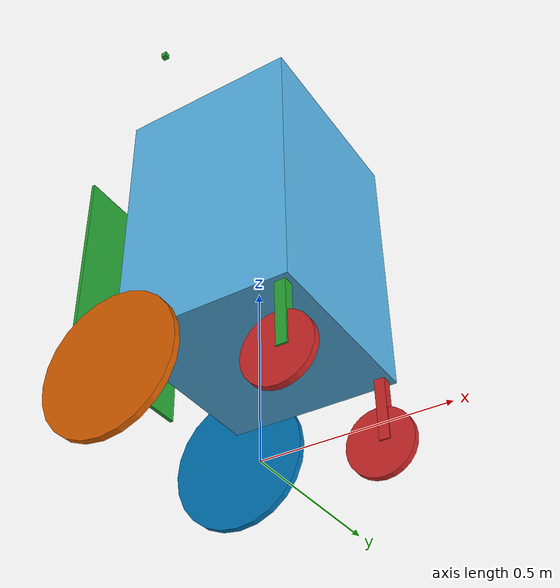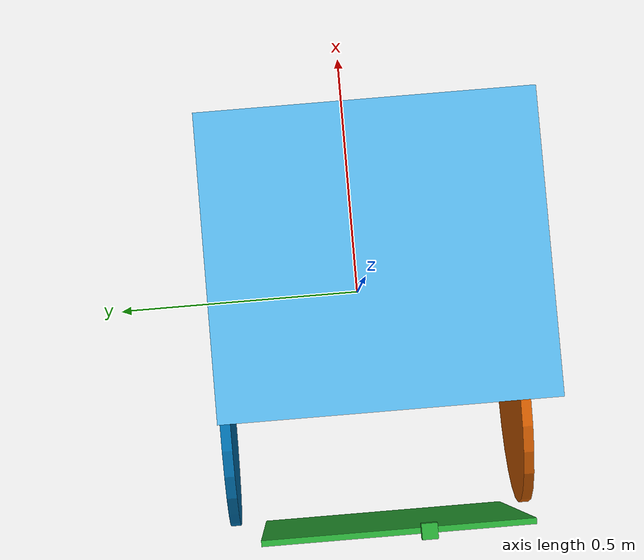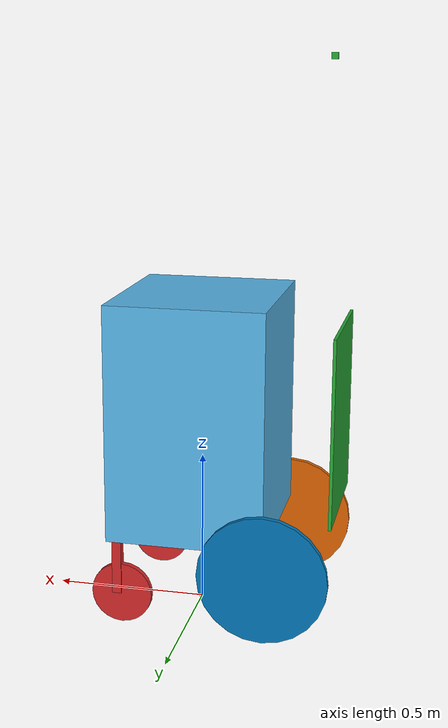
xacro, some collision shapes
<?xml version="1.0"?>
<!--
	This is a differential drive robot badly
        modelled after the wheelchair

        This robot has a camera
        It now has a target
        It now tilts the camera

	Version 1.2.
	-->

<robot name="$(arg name)" xmlns:xacro="http://www.ros.org/wiki/xacro">

  <!-- Define the robot -->
  <xacro:arg name="camera_tilt" default="0.0" />
  <xacro:property name="camera_tilt" value="$(arg camera_tilt)" />
  <xacro:arg name="show_video" default="true" />
  <xacro:property name="show_video" value="$(arg show_video)" />
  <xacro:arg name="robot_name" default="chair" />
  <xacro:property name="robot_name" value="$(arg name)" />
  <xacro:arg name="target" default="apriltag_36h10_0" />
  <xacro:property name="target" value="$(arg target)" />
  <xacro:property name="robot_base_width" value="0.556" />
  <xacro:property name="robot_base_length" value="0.504" />
  <xacro:property name="robot_base_height" value="0.762" />
  <xacro:property name="robot_base_mass" value="4.5" />
  <xacro:property name="robot_wheel_zoffset" value="-0.457" />
  <xacro:property name="robot_wheel_xoffset" value="-0.252" />
  <xacro:property name="robot_wheel_radius" value="0.206" />
  <xacro:property name="robot_wheel_width" value="0.02" />
  <xacro:property name="robot_caster_link_height" value="0.179" />
  <xacro:property name="robot_caster_link_width" value="0.03" />
  <xacro:property name="robot_caster_link_length" value="0.03" />
  <xacro:property name="robot_caster_link_offset" value="-0.025" />
  <xacro:property name="robot_caster_joint_offset" value="${robot_base_length/2}" />
  <xacro:property name="robot_caster_wheel_radius" value="0.098" />
  <xacro:property name="robot_caster_wheel_width" value="0.02" />
  <xacro:property name="robot_camera_length" value="0.02" />
  <xacro:property name="robot_camera_width" value="0.02" />
  <xacro:property name="robot_camera_height" value="0.02" />
  <xacro:property name="robot_camera_xoffset" value="-0.4" />
  <xacro:property name="robot_camera_zoffset" value="1.1" />
  <xacro:property name="target_width" value="0.45" />
  <xacro:property name="target_length" value="0.01" />
  <xacro:property name="target_height" value="0.60" />
  <xacro:property name="target_xoffset" value="-0.45" />
  <xacro:property name="target_zoffset" value="-0.3" />

  <!-- Import colors defined externally -->
  <xacro:include filename="$(find chair)/colors.xacro" />

  <!-- Define macros to make moments of inertia easier -->
  <xacro:macro name="I_cylinder" params="m r h">
    <inertial>
      <mass value="${m}" />
      <inertia  ixx="${m*(3*r*r+h*h)/12}" iyy="${m*(3*r*r+h*h)/12}" izz="${m*r*r/2}"
              ixy = "0" ixz = "0" iyz = "0" />
    </inertial>
  </xacro:macro>
  <xacro:macro name="I_cuboid" params="m x y z">
    <inertial>
      <mass value="${m}" />
      <inertia  ixx="${m*(y*y+z*z)/12}" iyy="${m*(x*x+z*z)/12}" izz="${m*(x*x+z*z)/12}"
                ixy = "0" ixz = "0" iyz = "0" />
    </inertial>
  </xacro:macro>

  <!-- robot footprint -->
  <link name="base_footprint">
  </link>

  <!-- Base -->
  <link name="base_link">
    <visual>
      <origin rpy="1.57 0 -1.57" xyz="-0.3 0.0 0.4" />
      <geometry>
        <!-- box size="${robot_base_length} ${robot_base_width} ${robot_base_height}" -->
        <mesh filename="$(find chair)/emptychair.obj" scale="0.001 0.001 0.001"/>
      </geometry>
    </visual>
    <collision>
      <geometry>
        <box size="${robot_base_length} ${robot_base_width} ${robot_base_height}" />
      </geometry>
    </collision>
    <xacro:I_cuboid m="8.4" x="${robot_base_length}" y="${robot_base_width}" z="${robot_base_height}" />
  </link>

  <joint name="base_joint" type="fixed">
    <origin xyz="0.0 0.0 ${robot_wheel_radius-robot_wheel_zoffset}" rpy="0.0 0.0 0.0" />
    <parent link="base_footprint" />
    <child link="base_link" />
    <axis xyz="0 0 1" />
  </joint>

  <!-- Visual Target -->
  <gazebo reference="target_link">
    <material>${target}</material>
  </gazebo>
  <link name="target_link">
    <visual>
      <geometry>
        <box size="${target_length} ${target_width} ${target_height}" />
      </geometry>
      <material name="green"/>
    </visual>
    <collision>
      <geometry>
        <box size="${target_length} ${target_width} ${target_height}" />
      </geometry>
    </collision>
    <xacro:I_cuboid m="0.01" x="${target_length}" y="${target_width}" z="${target_height}" />
  </link>

  <joint name="target_joint" type="fixed">
    <origin xyz="${target_xoffset} 0.0 ${target_zoffset+target_height/2}" rpy="0.0 0.0 0.0" />
    <parent link="base_link" />
    <child link="target_link" />
    <axis xyz="0 0 1" />
  </joint>

  <!-- Cameraunit -->
  <gazebo reference="camera_link">
    <material>Gazebo/Green</material>
  </gazebo>
  <link name="camera_link">
    <visual>
      <geometry>
        <box size="${robot_camera_length} ${robot_camera_width} ${robot_camera_height}" />
      </geometry>
      <material name="green"/>
    </visual>
    <collision>
      <geometry>
        <box size="${robot_camera_length} ${robot_camera_width} ${robot_camera_height}" />
      </geometry>
    </collision>
    <xacro:I_cuboid m="0.01" x="${robot_camera_length}" y="${robot_camera_width}" z="${robot_camera_height}" />
  </link>

  <joint name="camera_joint" type="fixed">
    <origin xyz="${robot_camera_xoffset} 0.0 ${robot_camera_zoffset+robot_camera_height/2}" rpy="0 ${camera_tilt} 0" />
    <parent link="base_link" />
    <child link="camera_link" />
    <axis xyz="0 0 1" />
  </joint>

  <gazebo reference="camera_link">
    <sensor type="camera" name="camera">
      <visualize>${show_video}</visualize>
      <camera>
        <horizontal_fov>${65 * 3.1415/180}</horizontal_fov>
        <image>
          <format>R8G8B8</format>
          <width>640</width>
          <height>480</height>
        </image>
        <clip>
          <near>0.05</near>
          <far>50.0</far>
        </clip>
      </camera>
      <plugin name="camera_controller" filename="libgazebo_ros_camera.so">
        <ros>
          <namespace>/${robot_name}</namespace>
        </ros>
        <camera_name>camera</camera_name>
        <frame_name>camera_link</frame_name>
      </plugin>
    </sensor>
  </gazebo>

  <!-- Left wheel -->
  <link name="left_wheel_link">
    <visual>
      <!-- origin rpy="0 1.5708 0" xyz="0 0 0" -->
      <geometry>
        <cylinder length="${robot_wheel_width}" radius="${robot_wheel_radius}" />
        <!-- mesh filename="$(find chair)/rearwheel.obj" scale="0.001 0.001 0.001"-->>
      </geometry>
    </visual>
    <collision>
      <geometry>
        <cylinder length="${robot_wheel_width}" radius="${robot_wheel_radius}" />
      </geometry>
    </collision>
    <xacro:I_cylinder m="0.1" r="${robot_wheel_radius}" h="${robot_wheel_width}" />
  </link>

  <joint name="left_wheel_joint" type="continuous">
    <axis xyz="0 0 1" />
    <parent link="base_link" />
    <child link="left_wheel_link" />
    <origin rpy="-1.5708 0 0" xyz="${robot_wheel_xoffset} ${robot_base_width/2+robot_wheel_width/2} ${robot_wheel_zoffset}" />
  </joint>

  <!-- Right wheel -->
  <link name="right_wheel">
    <visual>
      <!-- origin rpy="0 1.5708 0" xyz="0 0 0" -->
      <geometry>
        <cylinder length="${robot_wheel_width}" radius="${robot_wheel_radius}" />
        <!-- mesh filename="$(find chair)/rearwheel.obj" scale="0.001 0.001 0.001"-->
      </geometry>
    </visual>
    <collision>
      <geometry>
        <cylinder length="${robot_wheel_width}" radius="${robot_wheel_radius}" />
      </geometry>
    </collision>
    <xacro:I_cylinder m="0.1" r="${robot_wheel_radius}" h="${robot_wheel_width}" />
  </link>

  <joint name="right_wheel_joint" type="continuous">
    <axis xyz="0 0 1" />
    <parent link="base_link" />
    <child link="right_wheel" />
    <origin rpy="-1.5708 0 0" xyz="${robot_wheel_xoffset} ${-robot_base_width/2-robot_wheel_width/2} ${robot_wheel_zoffset}" />
  </joint>

  <!-- Caster 'wheel' structure -->
  <gazebo reference="left_caster_link">
    <material>Gazebo/Red</material>
  </gazebo>

  <link name="left_caster_link">
    <visual>
      <origin xyz="${robot_caster_link_length/2} 0 0" rpy="0 0 0" />
      <geometry>
        <box size="${robot_caster_link_length} ${robot_caster_link_width} ${robot_caster_link_height}" />
      </geometry>
      <material name="red"/>
    </visual>
    <collision>
      <origin xyz="${robot_caster_link_length/2} 0 0" rpy="0 0 0" />
      <geometry>
        <box size="${robot_caster_link_length} ${robot_caster_link_width} ${robot_caster_link_height}" />
      </geometry>
    </collision>
    <xacro:I_cuboid m="0.1" x="${robot_caster_link_length}" y="${robot_caster_link_width}" z="${robot_caster_link_height}" />
  </link>

  <gazebo reference="right_caster_link">
    <material>Gazebo/Green</material>
  </gazebo>

  <link name="right_caster_link">
    <visual>
      <origin xyz="${robot_caster_link_length/2} 0 0" rpy="0 0 0" />
      <geometry>
        <box size="${robot_caster_link_length} ${robot_caster_link_width} ${robot_caster_link_height}" />
      </geometry>
      <material name="green"/>
    </visual>
    <collision>
      <origin xyz="${robot_caster_link_length/2} 0 0" rpy="0 0 0" />
      <geometry>
        <box size="${robot_caster_link_length} ${robot_caster_link_width} ${robot_caster_link_height}" />
      </geometry>
    </collision>
    <xacro:I_cuboid m="0.1" x="${robot_caster_link_length}" y="${robot_caster_link_width}" z="${robot_caster_link_height}" />
  </link>

  <joint name="left_caster_joint" type="continuous">
    <axis xyz="0 0 1" />
    <parent link="base_link" />
    <child link="left_caster_link" />
    <origin rpy="0 0 3.1415" xyz="${robot_caster_joint_offset-robot_caster_link_width/2} ${robot_base_width/2-robot_caster_link_length/2-0.015} ${-robot_base_height/2-robot_caster_link_height/2}" />
  </joint>

  <joint name="right_caster_joint" type="continuous">
    <axis xyz="0 0 1" />
    <parent link="base_link" />
    <child link="right_caster_link" />
    <origin rpy="0 0 3.1415" xyz="${robot_caster_joint_offset-robot_caster_link_width/2} ${-robot_base_width/2+robot_caster_link_length/2+0.015} ${-robot_base_height/2-robot_caster_link_height/2}" />
  </joint>

  <!-- caster wheel -->
  <gazebo reference="left_caster_wheel">
    <material>Gazebo/Red</material>
  </gazebo>
  <link name="left_caster_wheel">
    <visual>
      <geometry>
        <cylinder length="${robot_caster_wheel_width}" radius="${robot_caster_wheel_radius}" />
      </geometry>
      <material name="red" />
    </visual>
    <collision>
      <geometry>
        <cylinder length="${robot_caster_wheel_width}" radius="${robot_caster_wheel_radius}" />
      </geometry>
    </collision>
    <xacro:I_cylinder m="0.1" r="${robot_caster_wheel_width}" h="${robot_caster_link_height}" />
  </link>

  <gazebo reference="right_caster_wheel">
    <material>Gazebo/Green</material>
  </gazebo>
  <link name="right_caster_wheel">
    <visual>
      <geometry>
        <cylinder length="${robot_caster_wheel_width}" radius="${robot_caster_wheel_radius}" />
      </geometry>
      <material name="red" />
    </visual>
    <collision>
      <geometry>
        <cylinder length="${robot_caster_wheel_width}" radius="${robot_caster_wheel_radius}" />
      </geometry>
    </collision>
    <xacro:I_cylinder m="0.1" r="${robot_caster_wheel_width}" h="${robot_caster_link_height}" />
  </link>

  <joint name="left_caster_wheel_joint" type="continuous">
    <axis xyz="0 0 1" />
    <child link="left_caster_wheel" />
    <parent link="left_caster_link" />
    <origin rpy="1.5708 0 0" xyz="${robot_caster_link_length} 0 ${-robot_caster_link_height/2}" />
  </joint>

  <joint name="right_caster_wheel_joint" type="continuous">
    <axis xyz="0 0 1" />
    <child link="right_caster_wheel" />
    <parent link="right_caster_link" />
    <origin rpy="1.5708 0 0" xyz="${robot_caster_link_length} 0 ${-robot_caster_link_height/2}" />
  </joint>

  <gazebo>
    <plugin name="joint_state_publisher" filename="libgazebo_ros_joint_state_publisher.so">
      <ros>
        <namespace>/${robot_name}</namespace>
      </ros>
      <update_rate>100</update_rate>
      <joint_name>left_caster_wheel_joint</joint_name>
      <joint_name>right_caster_wheel_joint</joint_name>
      <joint_name>caster_joint</joint_name>
      <joint_name>left_wheel_joint</joint_name>
      <joint_name>right_wheel_joint</joint_name>
    </plugin>
  </gazebo>

  <gazebo>
    <plugin name="differential_drive_controller" filename="libgazebo_ros_diff_drive.so">
      <ros>
        <namespace>/${robot_name}</namespace>
      </ros>
      <update_rate>20</update_rate>
      <left_joint>left_wheel_joint</left_joint>
      <right_joint>right_wheel_joint</right_joint>
      <robotBaseFrame>base_footprint</robotBaseFrame>
      <wheel_separation>${robot_base_width+robot_wheel_width}</wheel_separation>
      <wheel_diameter>${2*robot_wheel_radius}</wheel_diameter>
      <publish_odom>true</publish_odom>
      <publish_odom_tf>true</publish_odom_tf>
      <publish_wheel_tf>true</publish_wheel_tf>
      <odometry_frame>odom</odometry_frame>
      <robot_base_frame>base_footprint</robot_base_frame>
      <command_topic>cmd_vel</command_topic>
    </plugin>
  </gazebo>
</robot>
